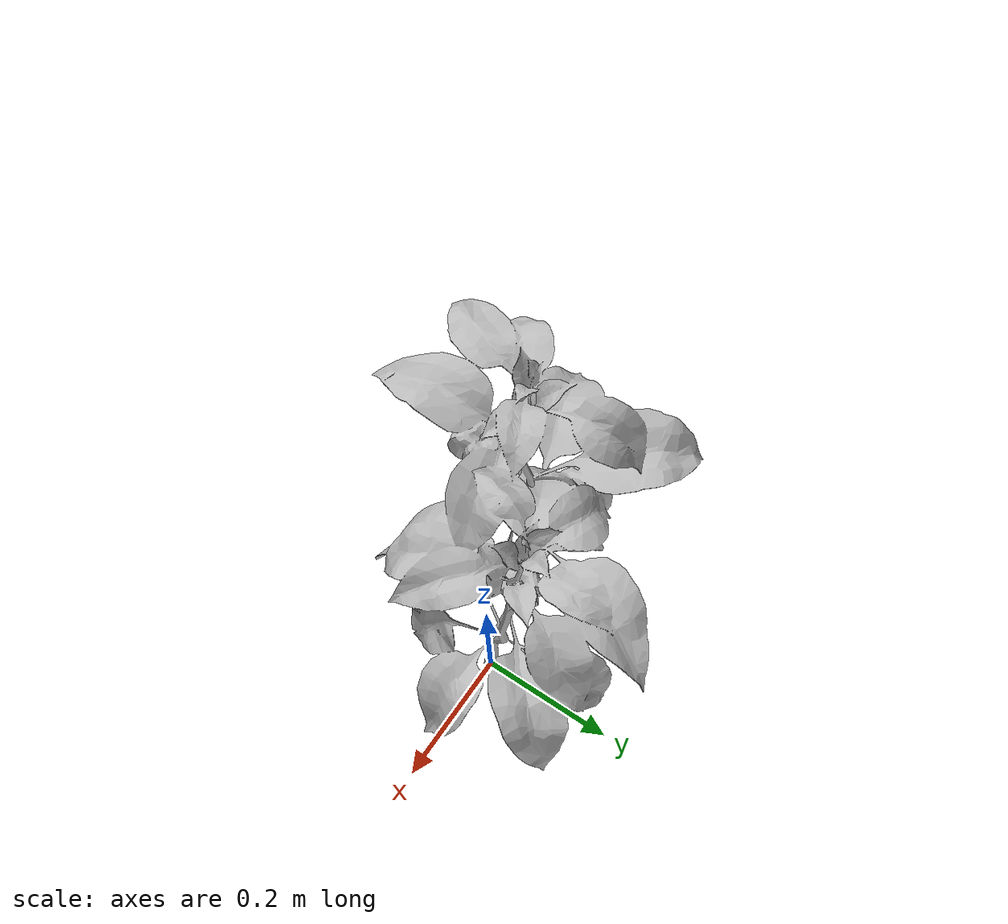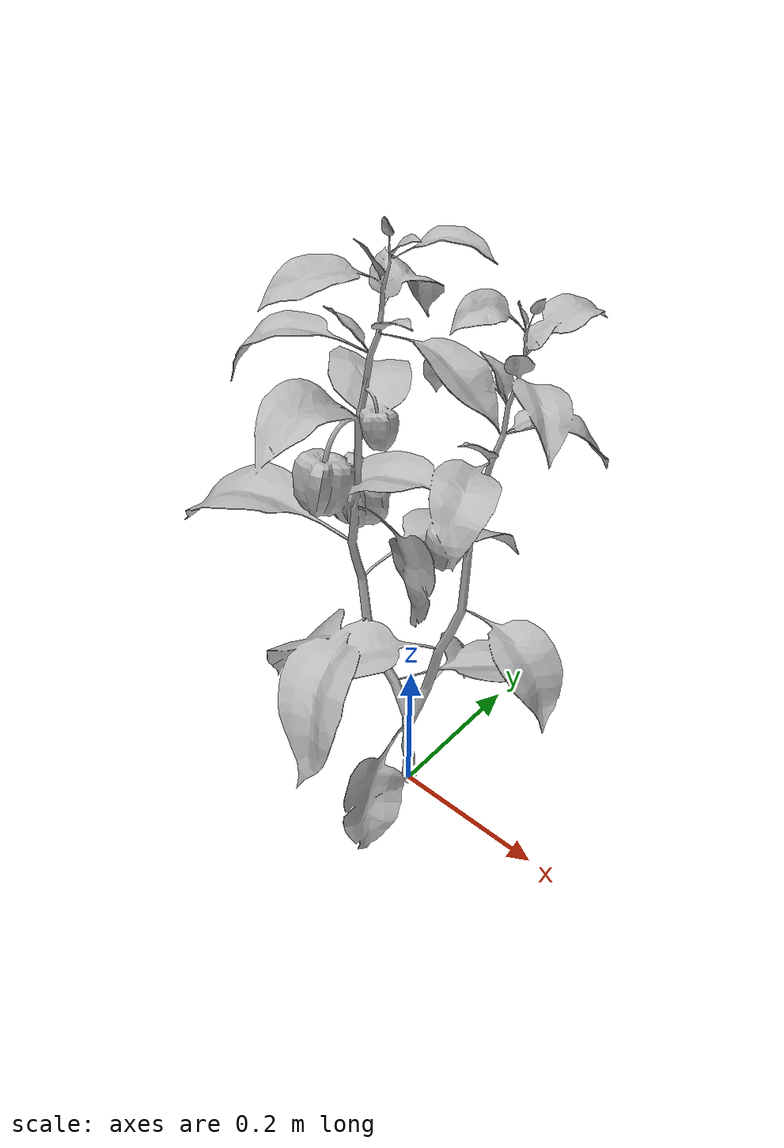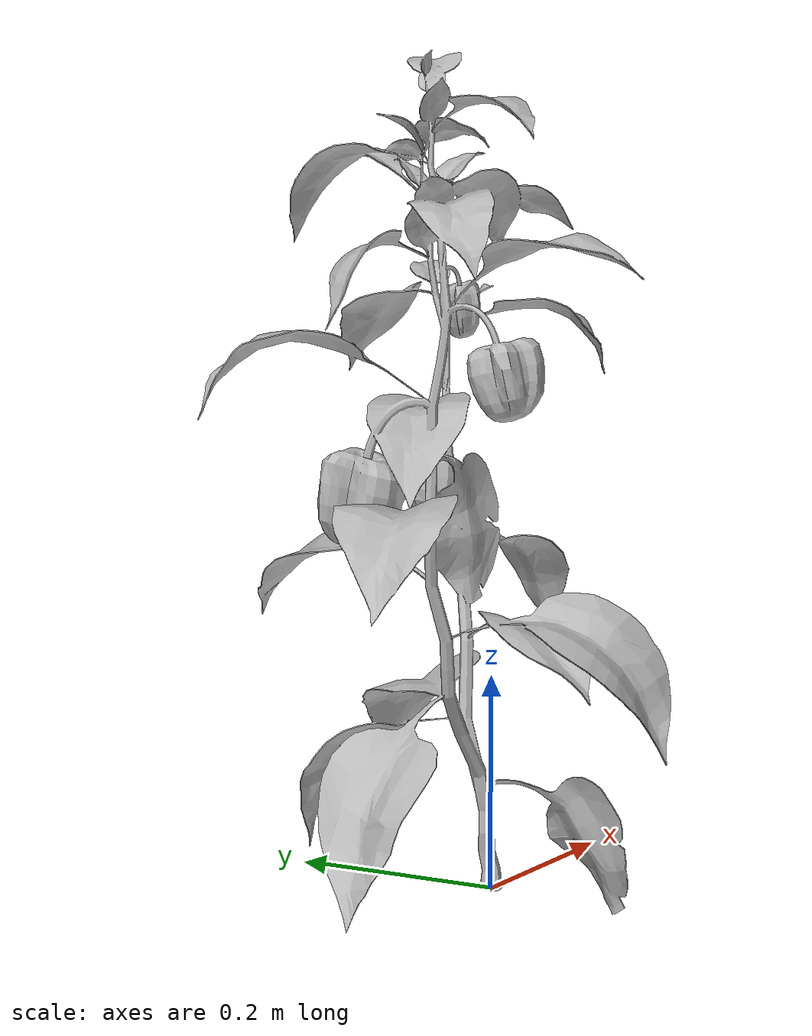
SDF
<?xml version='1.0'?>
<sdf version='1.6'>
  <model name='capsicum_plant_4'>
    <link name='link_capsicum_plant_4'>
       <visual name='visual'>
        <pose frame=''>0 0 0 0 0 0</pose>
        <geometry>
          <mesh>
            <uri>model://capsicum_plant_4/meshes/VG07_4.dae</uri>
          </mesh>
        </geometry>
      </visual>
    </link>
    <static>1</static>
  </model>
</sdf>
